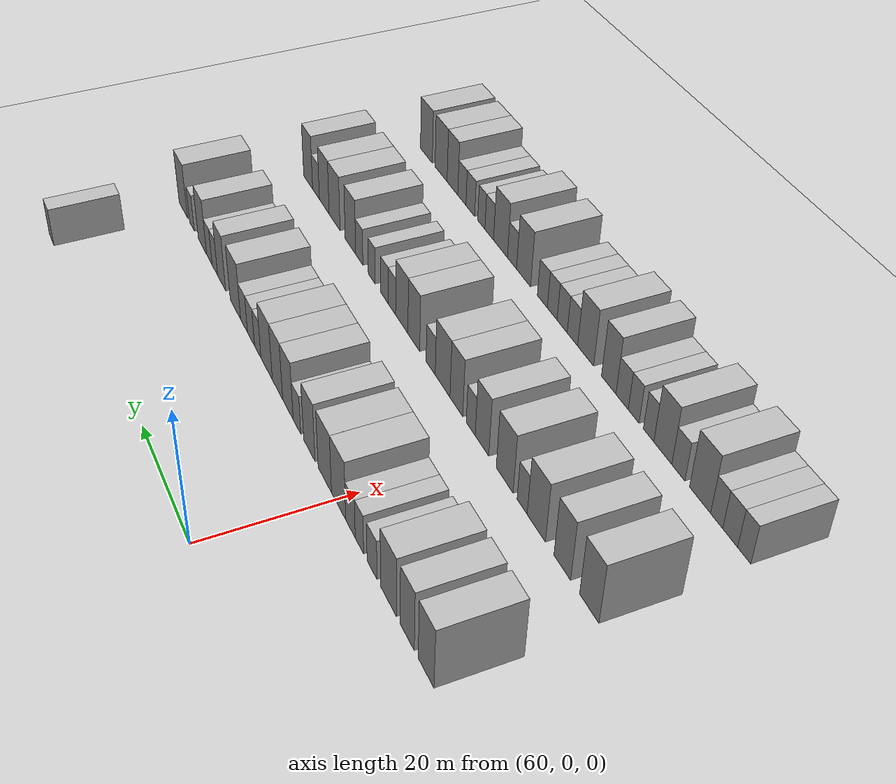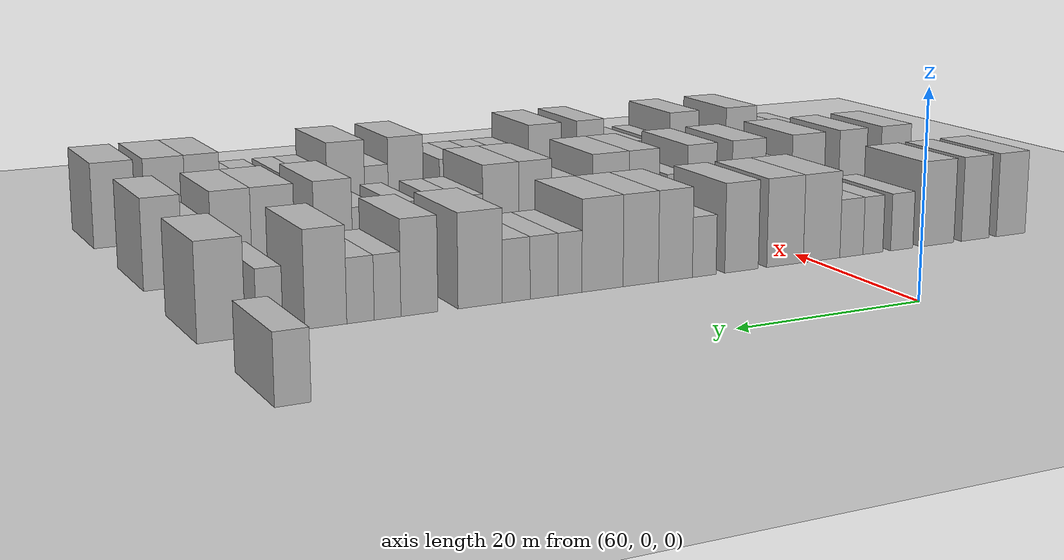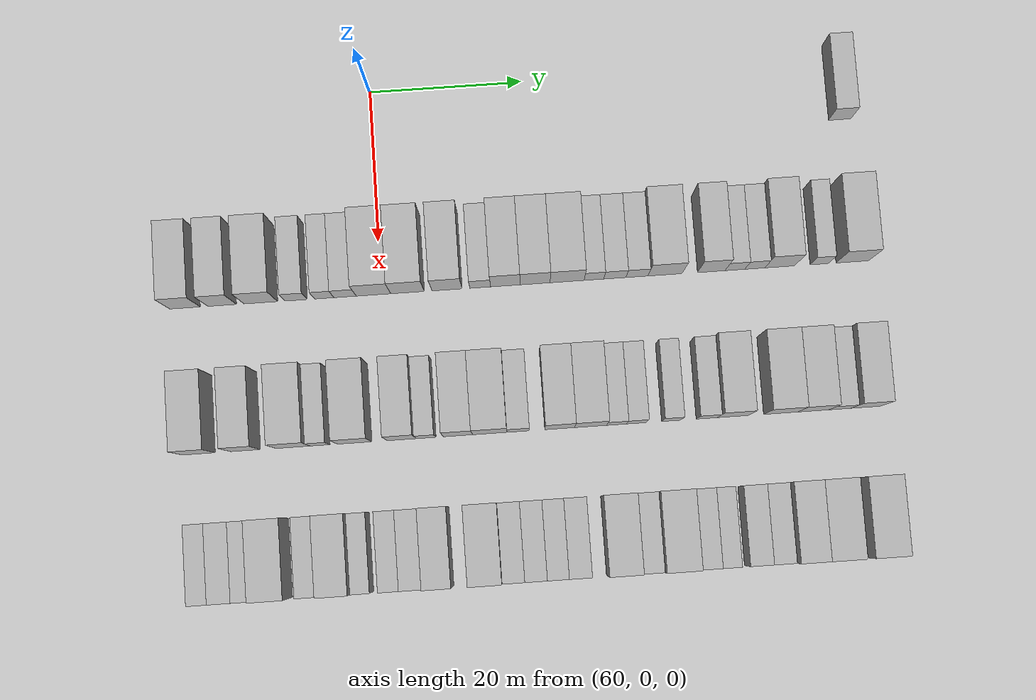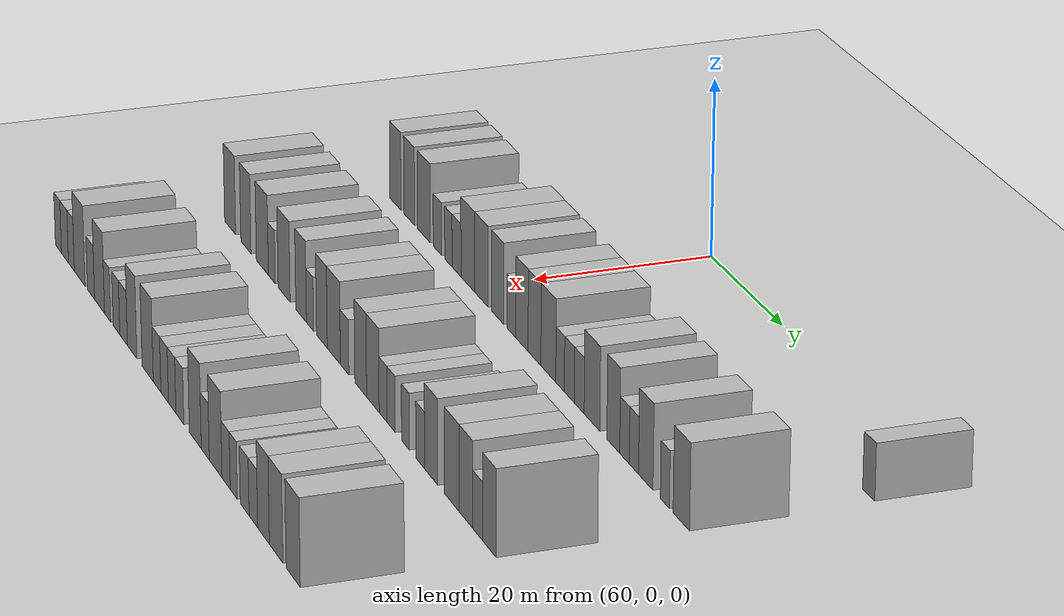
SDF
<sdf version="1.6">
 <world name="default">
  <include>
   <name>ground_plane_2</name>
   <uri>model://HANNAS_ground_plane</uri>
   <pose>100 0 0  0 0 0</pose>
  </include>
  <model name="building_458">
   <static>1</static>
   <pose>63.0000 61.5131 0 0.000000 0.000000 0.000000</pose>
   <link name="link">
    <pose>0 0 3.00 0 0 0</pose>
    <collision name="collision"><geometry><box><size>10.0000 2.9576 6.0000</size></box></geometry></collision>
    <visual name="visual">
     <cast_shadows>0</cast_shadows>
     <geometry><box><size>10.0000 2.9576 6.0000</size></box></geometry>
     <material>
      <script>
       <uri>model://HANNAS_wall/materials/scripts</uri>
       <uri>model://HANNAS_wall/materials/textures</uri>
       <name>vrc/HANNAS_wall</name>
      </script>
     </material>
    </visual>
   </link>
  </model>
  <model name="building_612">
   <static>1</static>
   <pose>82.0000 -25.5616 0 0.000000 0.000000 0.000000</pose>
   <link name="link">
    <pose>0 0 4.50 0 0 0</pose>
    <collision name="collision"><geometry><box><size>10.0000 3.9439 9.0000</size></box></geometry></collision>
    <visual name="visual">
     <cast_shadows>0</cast_shadows>
     <geometry><box><size>10.0000 3.9439 9.0000</size></box></geometry>
     <material>
      <script>
       <uri>model://HANNAS_wall/materials/scripts</uri>
       <uri>model://HANNAS_wall/materials/textures</uri>
       <name>vrc/HANNAS_wall</name>
      </script>
     </material>
    </visual>
   </link>
  </model>
  <model name="building_613">
   <static>1</static>
   <pose>82.0000 -20.7380 0 0.000000 0.000000 0.000000</pose>
   <link name="link">
    <pose>0 0 4.50 0 0 0</pose>
    <collision name="collision"><geometry><box><size>10.0000 3.7034 9.0000</size></box></geometry></collision>
    <visual name="visual">
     <cast_shadows>0</cast_shadows>
     <geometry><box><size>10.0000 3.7034 9.0000</size></box></geometry>
     <material>
      <script>
       <uri>model://HANNAS_wall/materials/scripts</uri>
       <uri>model://HANNAS_wall/materials/textures</uri>
       <name>vrc/HANNAS_wall</name>
      </script>
     </material>
    </visual>
   </link>
  </model>
  <model name="building_614">
   <static>1</static>
   <pose>82.0000 -15.7033 0 0.000000 0.000000 0.000000</pose>
   <link name="link">
    <pose>0 0 4.50 0 0 0</pose>
    <collision name="collision"><geometry><box><size>10.0000 4.3658 9.0000</size></box></geometry></collision>
    <visual name="visual">
     <cast_shadows>0</cast_shadows>
     <geometry><box><size>10.0000 4.3658 9.0000</size></box></geometry>
     <material>
      <script>
       <uri>model://HANNAS_wall/materials/scripts</uri>
       <uri>model://HANNAS_wall/materials/textures</uri>
       <name>vrc/HANNAS_wall</name>
      </script>
     </material>
    </visual>
   </link>
  </model>
  <model name="building_615">
   <static>1</static>
   <pose>82.0000 -11.0957 0 0.000000 0.000000 0.000000</pose>
   <link name="link">
    <pose>0 0 3.00 0 0 0</pose>
    <collision name="collision"><geometry><box><size>10.0000 2.8495 6.0000</size></box></geometry></collision>
    <visual name="visual">
     <cast_shadows>0</cast_shadows>
     <geometry><box><size>10.0000 2.8495 6.0000</size></box></geometry>
     <material>
      <script>
       <uri>model://HANNAS_wall/materials/scripts</uri>
       <uri>model://HANNAS_wall/materials/textures</uri>
       <name>vrc/HANNAS_wall</name>
      </script>
     </material>
    </visual>
   </link>
  </model>
  <model name="building_616">
   <static>1</static>
   <pose>82.0000 -7.4291 0 0.000000 0.000000 0.000000</pose>
   <link name="link">
    <pose>0 0 3.00 0 0 0</pose>
    <collision name="collision"><geometry><box><size>10.0000 2.4838 6.0000</size></box></geometry></collision>
    <visual name="visual">
     <cast_shadows>0</cast_shadows>
     <geometry><box><size>10.0000 2.4838 6.0000</size></box></geometry>
     <material>
      <script>
       <uri>model://HANNAS_wall/materials/scripts</uri>
       <uri>model://HANNAS_wall/materials/textures</uri>
       <name>vrc/HANNAS_wall</name>
      </script>
     </material>
    </visual>
   </link>
  </model>
  <model name="building_617">
   <static>1</static>
   <pose>82.0000 -4.7410 0 0.000000 0.000000 0.000000</pose>
   <link name="link">
    <pose>0 0 3.00 0 0 0</pose>
    <collision name="collision"><geometry><box><size>10.0000 2.8923 6.0000</size></box></geometry></collision>
    <visual name="visual">
     <cast_shadows>0</cast_shadows>
     <geometry><box><size>10.0000 2.8923 6.0000</size></box></geometry>
     <material>
      <script>
       <uri>model://HANNAS_wall/materials/scripts</uri>
       <uri>model://HANNAS_wall/materials/textures</uri>
       <name>vrc/HANNAS_wall</name>
      </script>
     </material>
    </visual>
   </link>
  </model>
  <model name="building_618">
   <static>1</static>
   <pose>82.0000 -1.0542 0 0.000000 0.000000 0.000000</pose>
   <link name="link">
    <pose>0 0 4.50 0 0 0</pose>
    <collision name="collision"><geometry><box><size>10.0000 4.4813 9.0000</size></box></geometry></collision>
    <visual name="visual">
     <cast_shadows>0</cast_shadows>
     <geometry><box><size>10.0000 4.4813 9.0000</size></box></geometry>
     <material>
      <script>
       <uri>model://HANNAS_wall/materials/scripts</uri>
       <uri>model://HANNAS_wall/materials/textures</uri>
       <name>vrc/HANNAS_wall</name>
      </script>
     </material>
    </visual>
   </link>
  </model>
  <model name="building_619">
   <static>1</static>
   <pose>82.0000 3.3736 0 0.000000 0.000000 0.000000</pose>
   <link name="link">
    <pose>0 0 4.50 0 0 0</pose>
    <collision name="collision"><geometry><box><size>10.0000 4.3742 9.0000</size></box></geometry></collision>
    <visual name="visual">
     <cast_shadows>0</cast_shadows>
     <geometry><box><size>10.0000 4.3742 9.0000</size></box></geometry>
     <material>
      <script>
       <uri>model://HANNAS_wall/materials/scripts</uri>
       <uri>model://HANNAS_wall/materials/textures</uri>
       <name>vrc/HANNAS_wall</name>
      </script>
     </material>
    </visual>
   </link>
  </model>
  <model name="building_620">
   <static>1</static>
   <pose>82.0000 8.5205 0 0.000000 0.000000 0.000000</pose>
   <link name="link">
    <pose>0 0 4.50 0 0 0</pose>
    <collision name="collision"><geometry><box><size>10.0000 3.9197 9.0000</size></box></geometry></collision>
    <visual name="visual">
     <cast_shadows>0</cast_shadows>
     <geometry><box><size>10.0000 3.9197 9.0000</size></box></geometry>
     <material>
      <script>
       <uri>model://HANNAS_wall/materials/scripts</uri>
       <uri>model://HANNAS_wall/materials/textures</uri>
       <name>vrc/HANNAS_wall</name>
      </script>
     </material>
    </visual>
   </link>
  </model>
  <model name="building_621">
   <static>1</static>
   <pose>82.0000 12.8348 0 0.000000 0.000000 0.000000</pose>
   <link name="link">
    <pose>0 0 3.00 0 0 0</pose>
    <collision name="collision"><geometry><box><size>10.0000 2.7089 6.0000</size></box></geometry></collision>
    <visual name="visual">
     <cast_shadows>0</cast_shadows>
     <geometry><box><size>10.0000 2.7089 6.0000</size></box></geometry>
     <material>
      <script>
       <uri>model://HANNAS_wall/materials/scripts</uri>
       <uri>model://HANNAS_wall/materials/textures</uri>
       <name>vrc/HANNAS_wall</name>
      </script>
     </material>
    </visual>
   </link>
  </model>
  <model name="building_622">
   <static>1</static>
   <pose>82.0000 16.1003 0 0.000000 0.000000 0.000000</pose>
   <link name="link">
    <pose>0 0 4.50 0 0 0</pose>
    <collision name="collision"><geometry><box><size>10.0000 3.8222 9.0000</size></box></geometry></collision>
    <visual name="visual">
     <cast_shadows>0</cast_shadows>
     <geometry><box><size>10.0000 3.8222 9.0000</size></box></geometry>
     <material>
      <script>
       <uri>model://HANNAS_wall/materials/scripts</uri>
       <uri>model://HANNAS_wall/materials/textures</uri>
       <name>vrc/HANNAS_wall</name>
      </script>
     </material>
    </visual>
   </link>
  </model>
  <model name="building_623">
   <static>1</static>
   <pose>82.0000 19.9621 0 0.000000 0.000000 0.000000</pose>
   <link name="link">
    <pose>0 0 4.50 0 0 0</pose>
    <collision name="collision"><geometry><box><size>10.0000 3.9014 9.0000</size></box></geometry></collision>
    <visual name="visual">
     <cast_shadows>0</cast_shadows>
     <geometry><box><size>10.0000 3.9014 9.0000</size></box></geometry>
     <material>
      <script>
       <uri>model://HANNAS_wall/materials/scripts</uri>
       <uri>model://HANNAS_wall/materials/textures</uri>
       <name>vrc/HANNAS_wall</name>
      </script>
     </material>
    </visual>
   </link>
  </model>
  <model name="building_624">
   <static>1</static>
   <pose>82.0000 24.1340 0 0.000000 0.000000 0.000000</pose>
   <link name="link">
    <pose>0 0 4.50 0 0 0</pose>
    <collision name="collision"><geometry><box><size>10.0000 4.4424 9.0000</size></box></geometry></collision>
    <visual name="visual">
     <cast_shadows>0</cast_shadows>
     <geometry><box><size>10.0000 4.4424 9.0000</size></box></geometry>
     <material>
      <script>
       <uri>model://HANNAS_wall/materials/scripts</uri>
       <uri>model://HANNAS_wall/materials/textures</uri>
       <name>vrc/HANNAS_wall</name>
      </script>
     </material>
    </visual>
   </link>
  </model>
  <model name="building_625">
   <static>1</static>
   <pose>82.0000 27.6326 0 0.000000 0.000000 0.000000</pose>
   <link name="link">
    <pose>0 0 3.00 0 0 0</pose>
    <collision name="collision"><geometry><box><size>10.0000 2.5549 6.0000</size></box></geometry></collision>
    <visual name="visual">
     <cast_shadows>0</cast_shadows>
     <geometry><box><size>10.0000 2.5549 6.0000</size></box></geometry>
     <material>
      <script>
       <uri>model://HANNAS_wall/materials/scripts</uri>
       <uri>model://HANNAS_wall/materials/textures</uri>
       <name>vrc/HANNAS_wall</name>
      </script>
     </material>
    </visual>
   </link>
  </model>
  <model name="building_626">
   <static>1</static>
   <pose>82.0000 30.3620 0 0.000000 0.000000 0.000000</pose>
   <link name="link">
    <pose>0 0 3.00 0 0 0</pose>
    <collision name="collision"><geometry><box><size>10.0000 2.9038 6.0000</size></box></geometry></collision>
    <visual name="visual">
     <cast_shadows>0</cast_shadows>
     <geometry><box><size>10.0000 2.9038 6.0000</size></box></geometry>
     <material>
      <script>
       <uri>model://HANNAS_wall/materials/scripts</uri>
       <uri>model://HANNAS_wall/materials/textures</uri>
       <name>vrc/HANNAS_wall</name>
      </script>
     </material>
    </visual>
   </link>
  </model>
  <model name="building_627">
   <static>1</static>
   <pose>82.0000 33.2432 0 0.000000 0.000000 0.000000</pose>
   <link name="link">
    <pose>0 0 3.00 0 0 0</pose>
    <collision name="collision"><geometry><box><size>10.0000 2.8586 6.0000</size></box></geometry></collision>
    <visual name="visual">
     <cast_shadows>0</cast_shadows>
     <geometry><box><size>10.0000 2.8586 6.0000</size></box></geometry>
     <material>
      <script>
       <uri>model://HANNAS_wall/materials/scripts</uri>
       <uri>model://HANNAS_wall/materials/textures</uri>
       <name>vrc/HANNAS_wall</name>
      </script>
     </material>
    </visual>
   </link>
  </model>
  <model name="building_628">
   <static>1</static>
   <pose>82.0000 36.9133 0 0.000000 0.000000 0.000000</pose>
   <link name="link">
    <pose>0 0 4.50 0 0 0</pose>
    <collision name="collision"><geometry><box><size>10.0000 4.4816 9.0000</size></box></geometry></collision>
    <visual name="visual">
     <cast_shadows>0</cast_shadows>
     <geometry><box><size>10.0000 4.4816 9.0000</size></box></geometry>
     <material>
      <script>
       <uri>model://HANNAS_wall/materials/scripts</uri>
       <uri>model://HANNAS_wall/materials/textures</uri>
       <name>vrc/HANNAS_wall</name>
      </script>
     </material>
    </visual>
   </link>
  </model>
  <model name="building_629">
   <static>1</static>
   <pose>82.0000 42.9602 0 0.000000 0.000000 0.000000</pose>
   <link name="link">
    <pose>0 0 4.50 0 0 0</pose>
    <collision name="collision"><geometry><box><size>10.0000 3.6124 9.0000</size></box></geometry></collision>
    <visual name="visual">
     <cast_shadows>0</cast_shadows>
     <geometry><box><size>10.0000 3.6124 9.0000</size></box></geometry>
     <material>
      <script>
       <uri>model://HANNAS_wall/materials/scripts</uri>
       <uri>model://HANNAS_wall/materials/textures</uri>
       <name>vrc/HANNAS_wall</name>
      </script>
     </material>
    </visual>
   </link>
  </model>
  <model name="building_630">
   <static>1</static>
   <pose>82.0000 46.0503 0 0.000000 0.000000 0.000000</pose>
   <link name="link">
    <pose>0 0 3.00 0 0 0</pose>
    <collision name="collision"><geometry><box><size>10.0000 2.5677 6.0000</size></box></geometry></collision>
    <visual name="visual">
     <cast_shadows>0</cast_shadows>
     <geometry><box><size>10.0000 2.5677 6.0000</size></box></geometry>
     <material>
      <script>
       <uri>model://HANNAS_wall/materials/scripts</uri>
       <uri>model://HANNAS_wall/materials/textures</uri>
       <name>vrc/HANNAS_wall</name>
      </script>
     </material>
    </visual>
   </link>
  </model>
  <model name="building_631">
   <static>1</static>
   <pose>82.0000 48.6393 0 0.000000 0.000000 0.000000</pose>
   <link name="link">
    <pose>0 0 3.00 0 0 0</pose>
    <collision name="collision"><geometry><box><size>10.0000 2.6103 6.0000</size></box></geometry></collision>
    <visual name="visual">
     <cast_shadows>0</cast_shadows>
     <geometry><box><size>10.0000 2.6103 6.0000</size></box></geometry>
     <material>
      <script>
       <uri>model://HANNAS_wall/materials/scripts</uri>
       <uri>model://HANNAS_wall/materials/textures</uri>
       <name>vrc/HANNAS_wall</name>
      </script>
     </material>
    </visual>
   </link>
  </model>
  <model name="building_632">
   <static>1</static>
   <pose>82.0000 51.9000 0 0.000000 0.000000 0.000000</pose>
   <link name="link">
    <pose>0 0 4.50 0 0 0</pose>
    <collision name="collision"><geometry><box><size>10.0000 3.9112 9.0000</size></box></geometry></collision>
    <visual name="visual">
     <cast_shadows>0</cast_shadows>
     <geometry><box><size>10.0000 3.9112 9.0000</size></box></geometry>
     <material>
      <script>
       <uri>model://HANNAS_wall/materials/scripts</uri>
       <uri>model://HANNAS_wall/materials/textures</uri>
       <name>vrc/HANNAS_wall</name>
      </script>
     </material>
    </visual>
   </link>
  </model>
  <model name="building_633">
   <static>1</static>
   <pose>82.0000 57.0561 0 0.000000 0.000000 0.000000</pose>
   <link name="link">
    <pose>0 0 3.00 0 0 0</pose>
    <collision name="collision"><geometry><box><size>10.0000 2.4009 6.0000</size></box></geometry></collision>
    <visual name="visual">
     <cast_shadows>0</cast_shadows>
     <geometry><box><size>10.0000 2.4009 6.0000</size></box></geometry>
     <material>
      <script>
       <uri>model://HANNAS_wall/materials/scripts</uri>
       <uri>model://HANNAS_wall/materials/textures</uri>
       <name>vrc/HANNAS_wall</name>
      </script>
     </material>
    </visual>
   </link>
  </model>
  <model name="building_634">
   <static>1</static>
   <pose>82.0000 61.4034 0 0.000000 0.000000 0.000000</pose>
   <link name="link">
    <pose>0 0 4.50 0 0 0</pose>
    <collision name="collision"><geometry><box><size>10.0000 4.2937 9.0000</size></box></geometry></collision>
    <visual name="visual">
     <cast_shadows>0</cast_shadows>
     <geometry><box><size>10.0000 4.2937 9.0000</size></box></geometry>
     <material>
      <script>
       <uri>model://HANNAS_wall/materials/scripts</uri>
       <uri>model://HANNAS_wall/materials/textures</uri>
       <name>vrc/HANNAS_wall</name>
      </script>
     </material>
    </visual>
   </link>
  </model>
  <model name="building_792">
   <static>1</static>
   <pose>101.0000 -24.6247 0 0.000000 0.000000 0.000000</pose>
   <link name="link">
    <pose>0 0 4.50 0 0 0</pose>
    <collision name="collision"><geometry><box><size>10.0000 4.1975 9.0000</size></box></geometry></collision>
    <visual name="visual">
     <cast_shadows>0</cast_shadows>
     <geometry><box><size>10.0000 4.1975 9.0000</size></box></geometry>
     <material>
      <script>
       <uri>model://HANNAS_wall/materials/scripts</uri>
       <uri>model://HANNAS_wall/materials/textures</uri>
       <name>vrc/HANNAS_wall</name>
      </script>
     </material>
    </visual>
   </link>
  </model>
  <model name="building_793">
   <static>1</static>
   <pose>101.0000 -18.6165 0 0.000000 0.000000 0.000000</pose>
   <link name="link">
    <pose>0 0 4.50 0 0 0</pose>
    <collision name="collision"><geometry><box><size>10.0000 3.8188 9.0000</size></box></geometry></collision>
    <visual name="visual">
     <cast_shadows>0</cast_shadows>
     <geometry><box><size>10.0000 3.8188 9.0000</size></box></geometry>
     <material>
      <script>
       <uri>model://HANNAS_wall/materials/scripts</uri>
       <uri>model://HANNAS_wall/materials/textures</uri>
       <name>vrc/HANNAS_wall</name>
      </script>
     </material>
    </visual>
   </link>
  </model>
  <model name="building_794">
   <static>1</static>
   <pose>101.0000 -12.4909 0 0.000000 0.000000 0.000000</pose>
   <link name="link">
    <pose>0 0 4.50 0 0 0</pose>
    <collision name="collision"><geometry><box><size>10.0000 4.4324 9.0000</size></box></geometry></collision>
    <visual name="visual">
     <cast_shadows>0</cast_shadows>
     <geometry><box><size>10.0000 4.4324 9.0000</size></box></geometry>
     <material>
      <script>
       <uri>model://HANNAS_wall/materials/scripts</uri>
       <uri>model://HANNAS_wall/materials/textures</uri>
       <name>vrc/HANNAS_wall</name>
      </script>
     </material>
    </visual>
   </link>
  </model>
  <model name="building_795">
   <static>1</static>
   <pose>101.0000 -9.0154 0 0.000000 0.000000 0.000000</pose>
   <link name="link">
    <pose>0 0 3.00 0 0 0</pose>
    <collision name="collision"><geometry><box><size>10.0000 2.5185 6.0000</size></box></geometry></collision>
    <visual name="visual">
     <cast_shadows>0</cast_shadows>
     <geometry><box><size>10.0000 2.5185 6.0000</size></box></geometry>
     <material>
      <script>
       <uri>model://HANNAS_wall/materials/scripts</uri>
       <uri>model://HANNAS_wall/materials/textures</uri>
       <name>vrc/HANNAS_wall</name>
      </script>
     </material>
    </visual>
   </link>
  </model>
  <model name="building_796">
   <static>1</static>
   <pose>101.0000 -4.5649 0 0.000000 0.000000 0.000000</pose>
   <link name="link">
    <pose>0 0 4.50 0 0 0</pose>
    <collision name="collision"><geometry><box><size>10.0000 4.3826 9.0000</size></box></geometry></collision>
    <visual name="visual">
     <cast_shadows>0</cast_shadows>
     <geometry><box><size>10.0000 4.3826 9.0000</size></box></geometry>
     <material>
      <script>
       <uri>model://HANNAS_wall/materials/scripts</uri>
       <uri>model://HANNAS_wall/materials/textures</uri>
       <name>vrc/HANNAS_wall</name>
      </script>
     </material>
    </visual>
   </link>
  </model>
  <model name="building_797">
   <static>1</static>
   <pose>101.0000 1.4930 0 0.000000 0.000000 0.000000</pose>
   <link name="link">
    <pose>0 0 4.50 0 0 0</pose>
    <collision name="collision"><geometry><box><size>10.0000 3.7332 9.0000</size></box></geometry></collision>
    <visual name="visual">
     <cast_shadows>0</cast_shadows>
     <geometry><box><size>10.0000 3.7332 9.0000</size></box></geometry>
     <material>
      <script>
       <uri>model://HANNAS_wall/materials/scripts</uri>
       <uri>model://HANNAS_wall/materials/textures</uri>
       <name>vrc/HANNAS_wall</name>
      </script>
     </material>
    </visual>
   </link>
  </model>
  <model name="building_798">
   <static>1</static>
   <pose>101.0000 4.6200 0 0.000000 0.000000 0.000000</pose>
   <link name="link">
    <pose>0 0 3.00 0 0 0</pose>
    <collision name="collision"><geometry><box><size>10.0000 2.5208 6.0000</size></box></geometry></collision>
    <visual name="visual">
     <cast_shadows>0</cast_shadows>
     <geometry><box><size>10.0000 2.5208 6.0000</size></box></geometry>
     <material>
      <script>
       <uri>model://HANNAS_wall/materials/scripts</uri>
       <uri>model://HANNAS_wall/materials/textures</uri>
       <name>vrc/HANNAS_wall</name>
      </script>
     </material>
    </visual>
   </link>
  </model>
  <model name="building_799">
   <static>1</static>
   <pose>101.0000 8.7427 0 0.000000 0.000000 0.000000</pose>
   <link name="link">
    <pose>0 0 4.50 0 0 0</pose>
    <collision name="collision"><geometry><box><size>10.0000 3.7246 9.0000</size></box></geometry></collision>
    <visual name="visual">
     <cast_shadows>0</cast_shadows>
     <geometry><box><size>10.0000 3.7246 9.0000</size></box></geometry>
     <material>
      <script>
       <uri>model://HANNAS_wall/materials/scripts</uri>
       <uri>model://HANNAS_wall/materials/textures</uri>
       <name>vrc/HANNAS_wall</name>
      </script>
     </material>
    </visual>
   </link>
  </model>
  <model name="building_800">
   <static>1</static>
   <pose>101.0000 12.8272 0 0.000000 0.000000 0.000000</pose>
   <link name="link">
    <pose>0 0 4.50 0 0 0</pose>
    <collision name="collision"><geometry><box><size>10.0000 4.4445 9.0000</size></box></geometry></collision>
    <visual name="visual">
     <cast_shadows>0</cast_shadows>
     <geometry><box><size>10.0000 4.4445 9.0000</size></box></geometry>
     <material>
      <script>
       <uri>model://HANNAS_wall/materials/scripts</uri>
       <uri>model://HANNAS_wall/materials/textures</uri>
       <name>vrc/HANNAS_wall</name>
      </script>
     </material>
    </visual>
   </link>
  </model>
  <model name="building_801">
   <static>1</static>
   <pose>101.0000 16.4683 0 0.000000 0.000000 0.000000</pose>
   <link name="link">
    <pose>0 0 3.00 0 0 0</pose>
    <collision name="collision"><geometry><box><size>10.0000 2.8379 6.0000</size></box></geometry></collision>
    <visual name="visual">
     <cast_shadows>0</cast_shadows>
     <geometry><box><size>10.0000 2.8379 6.0000</size></box></geometry>
     <material>
      <script>
       <uri>model://HANNAS_wall/materials/scripts</uri>
       <uri>model://HANNAS_wall/materials/textures</uri>
       <name>vrc/HANNAS_wall</name>
      </script>
     </material>
    </visual>
   </link>
  </model>
  <model name="building_802">
   <static>1</static>
   <pose>101.0000 21.8030 0 0.000000 0.000000 0.000000</pose>
   <link name="link">
    <pose>0 0 4.50 0 0 0</pose>
    <collision name="collision"><geometry><box><size>10.0000 3.8314 9.0000</size></box></geometry></collision>
    <visual name="visual">
     <cast_shadows>0</cast_shadows>
     <geometry><box><size>10.0000 3.8314 9.0000</size></box></geometry>
     <material>
      <script>
       <uri>model://HANNAS_wall/materials/scripts</uri>
       <uri>model://HANNAS_wall/materials/textures</uri>
       <name>vrc/HANNAS_wall</name>
      </script>
     </material>
    </visual>
   </link>
  </model>
  <model name="building_803">
   <static>1</static>
   <pose>101.0000 25.7772 0 0.000000 0.000000 0.000000</pose>
   <link name="link">
    <pose>0 0 4.50 0 0 0</pose>
    <collision name="collision"><geometry><box><size>10.0000 4.1170 9.0000</size></box></geometry></collision>
    <visual name="visual">
     <cast_shadows>0</cast_shadows>
     <geometry><box><size>10.0000 4.1170 9.0000</size></box></geometry>
     <material>
      <script>
       <uri>model://HANNAS_wall/materials/scripts</uri>
       <uri>model://HANNAS_wall/materials/textures</uri>
       <name>vrc/HANNAS_wall</name>
      </script>
     </material>
    </visual>
   </link>
  </model>
  <model name="building_804">
   <static>1</static>
   <pose>101.0000 29.1065 0 0.000000 0.000000 0.000000</pose>
   <link name="link">
    <pose>0 0 3.00 0 0 0</pose>
    <collision name="collision"><geometry><box><size>10.0000 2.5416 6.0000</size></box></geometry></collision>
    <visual name="visual">
     <cast_shadows>0</cast_shadows>
     <geometry><box><size>10.0000 2.5416 6.0000</size></box></geometry>
     <material>
      <script>
       <uri>model://HANNAS_wall/materials/scripts</uri>
       <uri>model://HANNAS_wall/materials/textures</uri>
       <name>vrc/HANNAS_wall</name>
      </script>
     </material>
    </visual>
   </link>
  </model>
  <model name="building_805">
   <static>1</static>
   <pose>101.0000 31.6663 0 0.000000 0.000000 0.000000</pose>
   <link name="link">
    <pose>0 0 3.00 0 0 0</pose>
    <collision name="collision"><geometry><box><size>10.0000 2.5779 6.0000</size></box></geometry></collision>
    <visual name="visual">
     <cast_shadows>0</cast_shadows>
     <geometry><box><size>10.0000 2.5779 6.0000</size></box></geometry>
     <material>
      <script>
       <uri>model://HANNAS_wall/materials/scripts</uri>
       <uri>model://HANNAS_wall/materials/textures</uri>
       <name>vrc/HANNAS_wall</name>
      </script>
     </material>
    </visual>
   </link>
  </model>
  <model name="building_806">
   <static>1</static>
   <pose>101.0000 36.1850 0 0.000000 0.000000 0.000000</pose>
   <link name="link">
    <pose>0 0 3.00 0 0 0</pose>
    <collision name="collision"><geometry><box><size>10.0000 2.4595 6.0000</size></box></geometry></collision>
    <visual name="visual">
     <cast_shadows>0</cast_shadows>
     <geometry><box><size>10.0000 2.4595 6.0000</size></box></geometry>
     <material>
      <script>
       <uri>model://HANNAS_wall/materials/scripts</uri>
       <uri>model://HANNAS_wall/materials/textures</uri>
       <name>vrc/HANNAS_wall</name>
      </script>
     </material>
    </visual>
   </link>
  </model>
  <model name="building_807">
   <static>1</static>
   <pose>101.0000 40.7656 0 0.000000 0.000000 0.000000</pose>
   <link name="link">
    <pose>0 0 3.00 0 0 0</pose>
    <collision name="collision"><geometry><box><size>10.0000 2.7017 6.0000</size></box></geometry></collision>
    <visual name="visual">
     <cast_shadows>0</cast_shadows>
     <geometry><box><size>10.0000 2.7017 6.0000</size></box></geometry>
     <material>
      <script>
       <uri>model://HANNAS_wall/materials/scripts</uri>
       <uri>model://HANNAS_wall/materials/textures</uri>
       <name>vrc/HANNAS_wall</name>
      </script>
     </material>
    </visual>
   </link>
  </model>
  <model name="building_808">
   <static>1</static>
   <pose>101.0000 44.1206 0 0.000000 0.000000 0.000000</pose>
   <link name="link">
    <pose>0 0 4.50 0 0 0</pose>
    <collision name="collision"><geometry><box><size>10.0000 4.0083 9.0000</size></box></geometry></collision>
    <visual name="visual">
     <cast_shadows>0</cast_shadows>
     <geometry><box><size>10.0000 4.0083 9.0000</size></box></geometry>
     <material>
      <script>
       <uri>model://HANNAS_wall/materials/scripts</uri>
       <uri>model://HANNAS_wall/materials/textures</uri>
       <name>vrc/HANNAS_wall</name>
      </script>
     </material>
    </visual>
   </link>
  </model>
  <model name="building_809">
   <static>1</static>
   <pose>101.0000 50.3117 0 0.000000 0.000000 0.000000</pose>
   <link name="link">
    <pose>0 0 4.50 0 0 0</pose>
    <collision name="collision"><geometry><box><size>10.0000 4.3738 9.0000</size></box></geometry></collision>
    <visual name="visual">
     <cast_shadows>0</cast_shadows>
     <geometry><box><size>10.0000 4.3738 9.0000</size></box></geometry>
     <material>
      <script>
       <uri>model://HANNAS_wall/materials/scripts</uri>
       <uri>model://HANNAS_wall/materials/textures</uri>
       <name>vrc/HANNAS_wall</name>
      </script>
     </material>
    </visual>
   </link>
  </model>
  <model name="building_810">
   <static>1</static>
   <pose>101.0000 54.5062 0 0.000000 0.000000 0.000000</pose>
   <link name="link">
    <pose>0 0 4.50 0 0 0</pose>
    <collision name="collision"><geometry><box><size>10.0000 4.0152 9.0000</size></box></geometry></collision>
    <visual name="visual">
     <cast_shadows>0</cast_shadows>
     <geometry><box><size>10.0000 4.0152 9.0000</size></box></geometry>
     <material>
      <script>
       <uri>model://HANNAS_wall/materials/scripts</uri>
       <uri>model://HANNAS_wall/materials/textures</uri>
       <name>vrc/HANNAS_wall</name>
      </script>
     </material>
    </visual>
   </link>
  </model>
  <model name="building_811">
   <static>1</static>
   <pose>101.0000 57.9428 0 0.000000 0.000000 0.000000</pose>
   <link name="link">
    <pose>0 0 3.00 0 0 0</pose>
    <collision name="collision"><geometry><box><size>10.0000 2.8581 6.0000</size></box></geometry></collision>
    <visual name="visual">
     <cast_shadows>0</cast_shadows>
     <geometry><box><size>10.0000 2.8581 6.0000</size></box></geometry>
     <material>
      <script>
       <uri>model://HANNAS_wall/materials/scripts</uri>
       <uri>model://HANNAS_wall/materials/textures</uri>
       <name>vrc/HANNAS_wall</name>
      </script>
     </material>
    </visual>
   </link>
  </model>
  <model name="building_812">
   <static>1</static>
   <pose>101.0000 61.2854 0 0.000000 0.000000 0.000000</pose>
   <link name="link">
    <pose>0 0 4.50 0 0 0</pose>
    <collision name="collision"><geometry><box><size>10.0000 3.8272 9.0000</size></box></geometry></collision>
    <visual name="visual">
     <cast_shadows>0</cast_shadows>
     <geometry><box><size>10.0000 3.8272 9.0000</size></box></geometry>
     <material>
      <script>
       <uri>model://HANNAS_wall/materials/scripts</uri>
       <uri>model://HANNAS_wall/materials/textures</uri>
       <name>vrc/HANNAS_wall</name>
      </script>
     </material>
    </visual>
   </link>
  </model>
  <model name="building_962">
   <static>1</static>
   <pose>120.0000 -24.6880 0 0.000000 0.000000 0.000000</pose>
   <link name="link">
    <pose>0 0 3.00 0 0 0</pose>
    <collision name="collision"><geometry><box><size>10.0000 2.5577 6.0000</size></box></geometry></collision>
    <visual name="visual">
     <cast_shadows>0</cast_shadows>
     <geometry><box><size>10.0000 2.5577 6.0000</size></box></geometry>
     <material>
      <script>
       <uri>model://HANNAS_wall/materials/scripts</uri>
       <uri>model://HANNAS_wall/materials/textures</uri>
       <name>vrc/HANNAS_wall</name>
      </script>
     </material>
    </visual>
   </link>
  </model>
  <model name="building_963">
   <static>1</static>
   <pose>120.0000 -21.9353 0 0.000000 0.000000 0.000000</pose>
   <link name="link">
    <pose>0 0 3.00 0 0 0</pose>
    <collision name="collision"><geometry><box><size>10.0000 2.9476 6.0000</size></box></geometry></collision>
    <visual name="visual">
     <cast_shadows>0</cast_shadows>
     <geometry><box><size>10.0000 2.9476 6.0000</size></box></geometry>
     <material>
      <script>
       <uri>model://HANNAS_wall/materials/scripts</uri>
       <uri>model://HANNAS_wall/materials/textures</uri>
       <name>vrc/HANNAS_wall</name>
      </script>
     </material>
    </visual>
   </link>
  </model>
  <model name="building_964">
   <static>1</static>
   <pose>120.0000 -19.2258 0 0.000000 0.000000 0.000000</pose>
   <link name="link">
    <pose>0 0 3.00 0 0 0</pose>
    <collision name="collision"><geometry><box><size>10.0000 2.4716 6.0000</size></box></geometry></collision>
    <visual name="visual">
     <cast_shadows>0</cast_shadows>
     <geometry><box><size>10.0000 2.4716 6.0000</size></box></geometry>
     <material>
      <script>
       <uri>model://HANNAS_wall/materials/scripts</uri>
       <uri>model://HANNAS_wall/materials/textures</uri>
       <name>vrc/HANNAS_wall</name>
      </script>
     </material>
    </visual>
   </link>
  </model>
  <model name="building_965">
   <static>1</static>
   <pose>120.0000 -15.7867 0 0.000000 0.000000 0.000000</pose>
   <link name="link">
    <pose>0 0 4.50 0 0 0</pose>
    <collision name="collision"><geometry><box><size>10.0000 4.4066 9.0000</size></box></geometry></collision>
    <visual name="visual">
     <cast_shadows>0</cast_shadows>
     <geometry><box><size>10.0000 4.4066 9.0000</size></box></geometry>
     <material>
      <script>
       <uri>model://HANNAS_wall/materials/scripts</uri>
       <uri>model://HANNAS_wall/materials/textures</uri>
       <name>vrc/HANNAS_wall</name>
      </script>
     </material>
    </visual>
   </link>
  </model>
  <model name="building_966">
   <static>1</static>
   <pose>120.0000 -11.1492 0 0.000000 0.000000 0.000000</pose>
   <link name="link">
    <pose>0 0 3.00 0 0 0</pose>
    <collision name="collision"><geometry><box><size>10.0000 2.8684 6.0000</size></box></geometry></collision>
    <visual name="visual">
     <cast_shadows>0</cast_shadows>
     <geometry><box><size>10.0000 2.8684 6.0000</size></box></geometry>
     <material>
      <script>
       <uri>model://HANNAS_wall/materials/scripts</uri>
       <uri>model://HANNAS_wall/materials/textures</uri>
       <name>vrc/HANNAS_wall</name>
      </script>
     </material>
    </visual>
   </link>
  </model>
  <model name="building_967">
   <static>1</static>
   <pose>120.0000 -7.6935 0 0.000000 0.000000 0.000000</pose>
   <link name="link">
    <pose>0 0 4.50 0 0 0</pose>
    <collision name="collision"><geometry><box><size>10.0000 4.0429 9.0000</size></box></geometry></collision>
    <visual name="visual">
     <cast_shadows>0</cast_shadows>
     <geometry><box><size>10.0000 4.0429 9.0000</size></box></geometry>
     <material>
      <script>
       <uri>model://HANNAS_wall/materials/scripts</uri>
       <uri>model://HANNAS_wall/materials/textures</uri>
       <name>vrc/HANNAS_wall</name>
      </script>
     </material>
    </visual>
   </link>
  </model>
  <model name="building_968">
   <static>1</static>
   <pose>120.0000 -4.4616 0 0.000000 0.000000 0.000000</pose>
   <link name="link">
    <pose>0 0 3.00 0 0 0</pose>
    <collision name="collision"><geometry><box><size>10.0000 2.4210 6.0000</size></box></geometry></collision>
    <visual name="visual">
     <cast_shadows>0</cast_shadows>
     <geometry><box><size>10.0000 2.4210 6.0000</size></box></geometry>
     <material>
      <script>
       <uri>model://HANNAS_wall/materials/scripts</uri>
       <uri>model://HANNAS_wall/materials/textures</uri>
       <name>vrc/HANNAS_wall</name>
      </script>
     </material>
    </visual>
   </link>
  </model>
  <model name="building_969">
   <static>1</static>
   <pose>120.0000 -0.9559 0 0.000000 0.000000 0.000000</pose>
   <link name="link">
    <pose>0 0 3.00 0 0 0</pose>
    <collision name="collision"><geometry><box><size>10.0000 2.5905 6.0000</size></box></geometry></collision>
    <visual name="visual">
     <cast_shadows>0</cast_shadows>
     <geometry><box><size>10.0000 2.5905 6.0000</size></box></geometry>
     <material>
      <script>
       <uri>model://HANNAS_wall/materials/scripts</uri>
       <uri>model://HANNAS_wall/materials/textures</uri>
       <name>vrc/HANNAS_wall</name>
      </script>
     </material>
    </visual>
   </link>
  </model>
  <model name="building_970">
   <static>1</static>
   <pose>120.0000 1.8370 0 0.000000 0.000000 0.000000</pose>
   <link name="link">
    <pose>0 0 3.00 0 0 0</pose>
    <collision name="collision"><geometry><box><size>10.0000 2.9953 6.0000</size></box></geometry></collision>
    <visual name="visual">
     <cast_shadows>0</cast_shadows>
     <geometry><box><size>10.0000 2.9953 6.0000</size></box></geometry>
     <material>
      <script>
       <uri>model://HANNAS_wall/materials/scripts</uri>
       <uri>model://HANNAS_wall/materials/textures</uri>
       <name>vrc/HANNAS_wall</name>
      </script>
     </material>
    </visual>
   </link>
  </model>
  <model name="building_971">
   <static>1</static>
   <pose>120.0000 5.1478 0 0.000000 0.000000 0.000000</pose>
   <link name="link">
    <pose>0 0 4.50 0 0 0</pose>
    <collision name="collision"><geometry><box><size>10.0000 3.6263 9.0000</size></box></geometry></collision>
    <visual name="visual">
     <cast_shadows>0</cast_shadows>
     <geometry><box><size>10.0000 3.6263 9.0000</size></box></geometry>
     <material>
      <script>
       <uri>model://HANNAS_wall/materials/scripts</uri>
       <uri>model://HANNAS_wall/materials/textures</uri>
       <name>vrc/HANNAS_wall</name>
      </script>
     </material>
    </visual>
   </link>
  </model>
  <model name="building_972">
   <static>1</static>
   <pose>120.0000 11.0732 0 0.000000 0.000000 0.000000</pose>
   <link name="link">
    <pose>0 0 4.50 0 0 0</pose>
    <collision name="collision"><geometry><box><size>10.0000 4.2244 9.0000</size></box></geometry></collision>
    <visual name="visual">
     <cast_shadows>0</cast_shadows>
     <geometry><box><size>10.0000 4.2244 9.0000</size></box></geometry>
     <material>
      <script>
       <uri>model://HANNAS_wall/materials/scripts</uri>
       <uri>model://HANNAS_wall/materials/textures</uri>
       <name>vrc/HANNAS_wall</name>
      </script>
     </material>
    </visual>
   </link>
  </model>
  <model name="building_973">
   <static>1</static>
   <pose>120.0000 14.5928 0 0.000000 0.000000 0.000000</pose>
   <link name="link">
    <pose>0 0 3.00 0 0 0</pose>
    <collision name="collision"><geometry><box><size>10.0000 2.8149 6.0000</size></box></geometry></collision>
    <visual name="visual">
     <cast_shadows>0</cast_shadows>
     <geometry><box><size>10.0000 2.8149 6.0000</size></box></geometry>
     <material>
      <script>
       <uri>model://HANNAS_wall/materials/scripts</uri>
       <uri>model://HANNAS_wall/materials/textures</uri>
       <name>vrc/HANNAS_wall</name>
      </script>
     </material>
    </visual>
   </link>
  </model>
  <model name="building_974">
   <static>1</static>
   <pose>120.0000 17.4019 0 0.000000 0.000000 0.000000</pose>
   <link name="link">
    <pose>0 0 3.00 0 0 0</pose>
    <collision name="collision"><geometry><box><size>10.0000 2.8031 6.0000</size></box></geometry></collision>
    <visual name="visual">
     <cast_shadows>0</cast_shadows>
     <geometry><box><size>10.0000 2.8031 6.0000</size></box></geometry>
     <material>
      <script>
       <uri>model://HANNAS_wall/materials/scripts</uri>
       <uri>model://HANNAS_wall/materials/textures</uri>
       <name>vrc/HANNAS_wall</name>
      </script>
     </material>
    </visual>
   </link>
  </model>
  <model name="building_975">
   <static>1</static>
   <pose>120.0000 20.1657 0 0.000000 0.000000 0.000000</pose>
   <link name="link">
    <pose>0 0 3.00 0 0 0</pose>
    <collision name="collision"><geometry><box><size>10.0000 2.7246 6.0000</size></box></geometry></collision>
    <visual name="visual">
     <cast_shadows>0</cast_shadows>
     <geometry><box><size>10.0000 2.7246 6.0000</size></box></geometry>
     <material>
      <script>
       <uri>model://HANNAS_wall/materials/scripts</uri>
       <uri>model://HANNAS_wall/materials/textures</uri>
       <name>vrc/HANNAS_wall</name>
      </script>
     </material>
    </visual>
   </link>
  </model>
  <model name="building_976">
   <static>1</static>
   <pose>120.0000 22.9640 0 0.000000 0.000000 0.000000</pose>
   <link name="link">
    <pose>0 0 3.00 0 0 0</pose>
    <collision name="collision"><geometry><box><size>10.0000 2.8718 6.0000</size></box></geometry></collision>
    <visual name="visual">
     <cast_shadows>0</cast_shadows>
     <geometry><box><size>10.0000 2.8718 6.0000</size></box></geometry>
     <material>
      <script>
       <uri>model://HANNAS_wall/materials/scripts</uri>
       <uri>model://HANNAS_wall/materials/textures</uri>
       <name>vrc/HANNAS_wall</name>
      </script>
     </material>
    </visual>
   </link>
  </model>
  <model name="building_977">
   <static>1</static>
   <pose>120.0000 28.5112 0 0.000000 0.000000 0.000000</pose>
   <link name="link">
    <pose>0 0 4.50 0 0 0</pose>
    <collision name="collision"><geometry><box><size>10.0000 4.2226 9.0000</size></box></geometry></collision>
    <visual name="visual">
     <cast_shadows>0</cast_shadows>
     <geometry><box><size>10.0000 4.2226 9.0000</size></box></geometry>
     <material>
      <script>
       <uri>model://HANNAS_wall/materials/scripts</uri>
       <uri>model://HANNAS_wall/materials/textures</uri>
       <name>vrc/HANNAS_wall</name>
      </script>
     </material>
    </visual>
   </link>
  </model>
  <model name="building_978">
   <static>1</static>
   <pose>120.0000 32.0230 0 0.000000 0.000000 0.000000</pose>
   <link name="link">
    <pose>0 0 3.00 0 0 0</pose>
    <collision name="collision"><geometry><box><size>10.0000 2.8010 6.0000</size></box></geometry></collision>
    <visual name="visual">
     <cast_shadows>0</cast_shadows>
     <geometry><box><size>10.0000 2.8010 6.0000</size></box></geometry>
     <material>
      <script>
       <uri>model://HANNAS_wall/materials/scripts</uri>
       <uri>model://HANNAS_wall/materials/textures</uri>
       <name>vrc/HANNAS_wall</name>
      </script>
     </material>
    </visual>
   </link>
  </model>
  <model name="building_979">
   <static>1</static>
   <pose>120.0000 35.6222 0 0.000000 0.000000 0.000000</pose>
   <link name="link">
    <pose>0 0 4.50 0 0 0</pose>
    <collision name="collision"><geometry><box><size>10.0000 4.3975 9.0000</size></box></geometry></collision>
    <visual name="visual">
     <cast_shadows>0</cast_shadows>
     <geometry><box><size>10.0000 4.3975 9.0000</size></box></geometry>
     <material>
      <script>
       <uri>model://HANNAS_wall/materials/scripts</uri>
       <uri>model://HANNAS_wall/materials/textures</uri>
       <name>vrc/HANNAS_wall</name>
      </script>
     </material>
    </visual>
   </link>
  </model>
  <model name="building_980">
   <static>1</static>
   <pose>120.0000 39.2197 0 0.000000 0.000000 0.000000</pose>
   <link name="link">
    <pose>0 0 3.00 0 0 0</pose>
    <collision name="collision"><geometry><box><size>10.0000 2.7974 6.0000</size></box></geometry></collision>
    <visual name="visual">
     <cast_shadows>0</cast_shadows>
     <geometry><box><size>10.0000 2.7974 6.0000</size></box></geometry>
     <material>
      <script>
       <uri>model://HANNAS_wall/materials/scripts</uri>
       <uri>model://HANNAS_wall/materials/textures</uri>
       <name>vrc/HANNAS_wall</name>
      </script>
     </material>
    </visual>
   </link>
  </model>
  <model name="building_981">
   <static>1</static>
   <pose>120.0000 41.8208 0 0.000000 0.000000 0.000000</pose>
   <link name="link">
    <pose>0 0 3.00 0 0 0</pose>
    <collision name="collision"><geometry><box><size>10.0000 2.4049 6.0000</size></box></geometry></collision>
    <visual name="visual">
     <cast_shadows>0</cast_shadows>
     <geometry><box><size>10.0000 2.4049 6.0000</size></box></geometry>
     <material>
      <script>
       <uri>model://HANNAS_wall/materials/scripts</uri>
       <uri>model://HANNAS_wall/materials/textures</uri>
       <name>vrc/HANNAS_wall</name>
      </script>
     </material>
    </visual>
   </link>
  </model>
  <model name="building_982">
   <static>1</static>
   <pose>120.0000 45.5071 0 0.000000 0.000000 0.000000</pose>
   <link name="link">
    <pose>0 0 3.00 0 0 0</pose>
    <collision name="collision"><geometry><box><size>10.0000 2.9676 6.0000</size></box></geometry></collision>
    <visual name="visual">
     <cast_shadows>0</cast_shadows>
     <geometry><box><size>10.0000 2.9676 6.0000</size></box></geometry>
     <material>
      <script>
       <uri>model://HANNAS_wall/materials/scripts</uri>
       <uri>model://HANNAS_wall/materials/textures</uri>
       <name>vrc/HANNAS_wall</name>
      </script>
     </material>
    </visual>
   </link>
  </model>
  <model name="building_983">
   <static>1</static>
   <pose>120.0000 48.4099 0 0.000000 0.000000 0.000000</pose>
   <link name="link">
    <pose>0 0 3.00 0 0 0</pose>
    <collision name="collision"><geometry><box><size>10.0000 2.8382 6.0000</size></box></geometry></collision>
    <visual name="visual">
     <cast_shadows>0</cast_shadows>
     <geometry><box><size>10.0000 2.8382 6.0000</size></box></geometry>
     <material>
      <script>
       <uri>model://HANNAS_wall/materials/scripts</uri>
       <uri>model://HANNAS_wall/materials/textures</uri>
       <name>vrc/HANNAS_wall</name>
      </script>
     </material>
    </visual>
   </link>
  </model>
  <model name="building_984">
   <static>1</static>
   <pose>120.0000 51.7265 0 0.000000 0.000000 0.000000</pose>
   <link name="link">
    <pose>0 0 4.50 0 0 0</pose>
    <collision name="collision"><geometry><box><size>10.0000 3.7950 9.0000</size></box></geometry></collision>
    <visual name="visual">
     <cast_shadows>0</cast_shadows>
     <geometry><box><size>10.0000 3.7950 9.0000</size></box></geometry>
     <material>
      <script>
       <uri>model://HANNAS_wall/materials/scripts</uri>
       <uri>model://HANNAS_wall/materials/textures</uri>
       <name>vrc/HANNAS_wall</name>
      </script>
     </material>
    </visual>
   </link>
  </model>
  <model name="building_985">
   <static>1</static>
   <pose>120.0000 55.8084 0 0.000000 0.000000 0.000000</pose>
   <link name="link">
    <pose>0 0 4.50 0 0 0</pose>
    <collision name="collision"><geometry><box><size>10.0000 4.3688 9.0000</size></box></geometry></collision>
    <visual name="visual">
     <cast_shadows>0</cast_shadows>
     <geometry><box><size>10.0000 4.3688 9.0000</size></box></geometry>
     <material>
      <script>
       <uri>model://HANNAS_wall/materials/scripts</uri>
       <uri>model://HANNAS_wall/materials/textures</uri>
       <name>vrc/HANNAS_wall</name>
      </script>
     </material>
    </visual>
   </link>
  </model>
  <model name="building_986">
   <static>1</static>
   <pose>120.0000 61.2253 0 0.000000 0.000000 0.000000</pose>
   <link name="link">
    <pose>0 0 4.50 0 0 0</pose>
    <collision name="collision"><geometry><box><size>10.0000 4.4649 9.0000</size></box></geometry></collision>
    <visual name="visual">
     <cast_shadows>0</cast_shadows>
     <geometry><box><size>10.0000 4.4649 9.0000</size></box></geometry>
     <material>
      <script>
       <uri>model://HANNAS_wall/materials/scripts</uri>
       <uri>model://HANNAS_wall/materials/textures</uri>
       <name>vrc/HANNAS_wall</name>
      </script>
     </material>
    </visual>
   </link>
  </model>
 </world>
</sdf>
